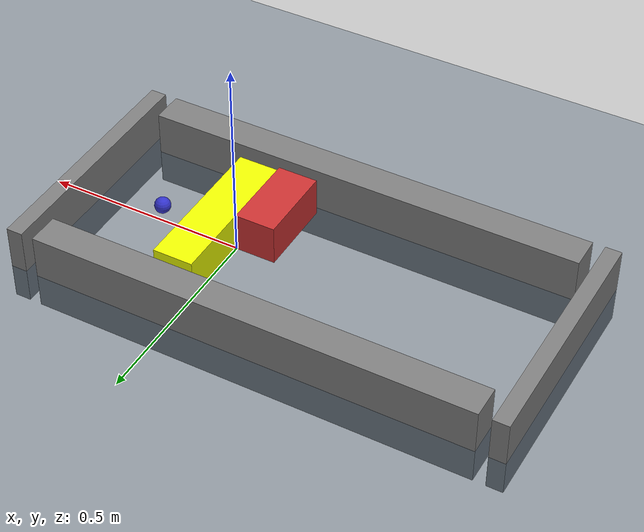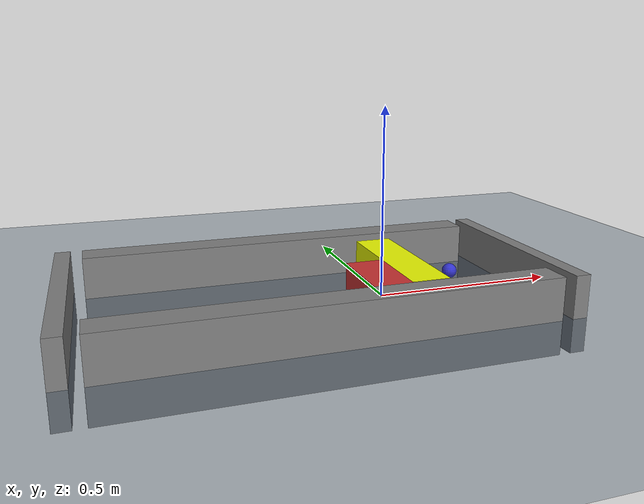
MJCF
<mujoco>
    <option timestep="0.01" integrator="RK4"/>
    <worldbody>
      <light pos="0 0 1.5" dir="0 0 -1" directional="true" />
    <geom name="floor" size="0 0 0.05" type="plane" material="groundplane" friction=".5 0.005 0.001"
        priority="2" condim="4" />
    </worldbody>

    <worldbody>

      <body name="ball" pos=".2 0 .05">
        <geom name="gball_0" type="sphere" size="0.02" mass="5." material="BallMat"
          friction=".5 0.005 0.001 " condim="4" />
        <site name="sensor_ball" />
        <joint name="joint_x" type="slide" pos="0 0 0" axis="1 0 0" />
        <joint name="joint_y" type="slide" pos="0 0 0" axis="0 1 0" />
      </body>

      <body name="cube1" pos="0.05 0 .05">
        <freejoint />
        <geom name="gcube_0" type="box" size="0.05 0.19 0.05" mass=".1" material="CubeMat1" condim="4" />
        <site name="sensor_box_2" />
      </body>

      <body name="cube2" pos="-0.05 -0.1 .05">
        <geom name="gcube_1" type="box" size="0.05 0.1 0.05" mass=".1" material="CubeMat2" condim="4" />
      </body>

      <body name="case" pos="0 0 0.01">
        <geom name="gcase_a" type="box" size="0.02 0.3 0.1" pos=".4 0 0" />
        <geom name="gcase_b" type="box" size="0.02 0.3 0.1" pos="-.8 0 0" />
        <geom name="gcase_c" type="box" size="0.55 0.04 0.1" pos="-0.2 .26 0" />
        <geom name="gcase_d" type="box" size="0.55 0.04 0.1" pos="-0.2 -.26 0" />
      </body>

    </worldbody>

    <actuator>
      <motor name="actuator_x" joint="joint_x" gear="1" />
      <motor name="actuator_y" joint="joint_y" gear="1" />
    </actuator>

    <asset>
      <!-- Materials for visualization -->
      <material name="MatPlane" rgba="0.8 0.9 0.8 1" />
      <material name="CubeMat1" rgba="0.94 1.0 0.0 1" />
      <material name="CubeMat2" rgba="0.8 0.2 0.2 1" />
      <material name="BallMat" rgba="0.2 0.2 0.8 1" />

      <texture type="skybox" builtin="gradient" rgb1="0.3 0.5 0.7" rgb2="0 0 0" width="512"
        height="3072" />
      <texture type="2d" name="groundplane" builtin="checker" mark="edge" rgb1="0.2 0.3 0.4"
        rgb2="0.1 0.2 0.3"
        markrgb="0.8 0.8 0.8" width="300" height="300" />
      <material name="groundplane" texture="groundplane" texuniform="true" texrepeat="5 5"
        reflectance="0.2" />
    </asset>

    <visual>
      <headlight diffuse="0.6 0.6 0.6" ambient="0.3 0.3 0.3" specular="0 0 0" />
      <rgba haze="0.15 0.25 0.35 1" />
      <global azimuth="60" elevation="-20" />
    </visual>

    <sensor>
      <velocimeter name="sensor_box2" site="sensor_box_2" />
      <velocimeter name="sensor_ball" site="sensor_ball" />
    </sensor>

  </mujoco>
